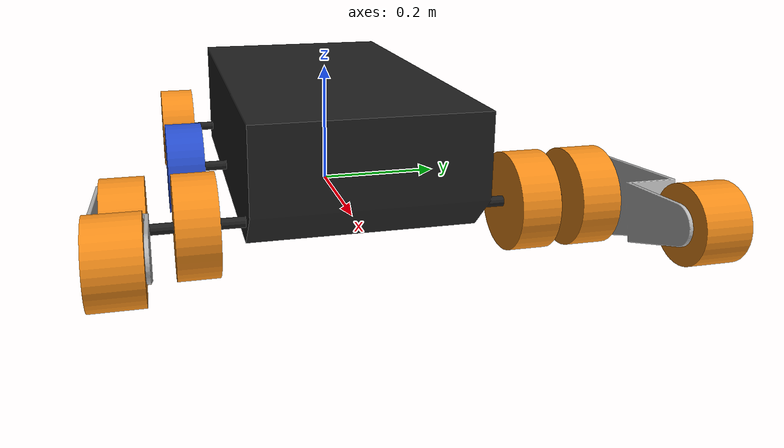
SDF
<sdf version='1.7'>
  <model name='hendbot'>
    <link name='base_link'>
      <inertial>
        <pose>-0.003667 -0 0.093492 0 -0 0</pose>
        <mass>441.809</mass>
        <inertia>
          <ixx>1.31882</ixx>
          <ixy>-1.29347e-07</ixy>
          <ixz>-0.0101969</ixz>
          <iyy>2.6734</iyy>
          <iyz>1.97052e-07</iyz>
          <izz>3.62601</izz>
        </inertia>
      </inertial>
      <collision name='base_link_fixed_joint_lump__hend_link_collision'>
        <pose>-0.33246 0 0 0 -0 0</pose>
        <geometry>
          <mesh>
            <scale>1 1 1</scale>
            <uri>model://hendbot/meshes/base_link.STL</uri>
          </mesh>
        </geometry>
        <surface>
          <contact>
            <ode/>
          </contact>
          <friction>
            <ode/>
          </friction>
        </surface>
      </collision>
      <collision name='base_link_fixed_joint_lump__LBW_Link_collision_1'>
        <pose>-0.28246 0.215 0.035 1.5708 -1.1717 -3.14159</pose>
        <geometry>
          <mesh>
            <scale>1 1 1</scale>
            <uri>model://hendbot/meshes/LBW_Link.STL</uri>
          </mesh>
        </geometry>
        <surface>
          <contact>
            <ode/>
          </contact>
          <friction>
            <ode>
              <mu>0.04</mu>
              <mu2>0.04</mu2>
            </ode>
          </friction>
        </surface>
      </collision>
      <collision name='base_link_fixed_joint_lump__LFW_Link_collision_2'>
        <pose>0.28245 0.215 0.035103 1.5708 0.76776 3.14159</pose>
        <geometry>
          <mesh>
            <scale>1 1 1</scale>
            <uri>model://hendbot/meshes/LFW_Link.STL</uri>
          </mesh>
        </geometry>
        <surface>
          <contact>
            <ode/>
          </contact>
          <friction>
            <ode>
              <mu>0.04</mu>
              <mu2>0.04</mu2>
            </ode>
          </friction>
        </surface>
      </collision>
      <collision name='base_link_fixed_joint_lump__RBW_Link_collision_3'>
        <pose>-0.28246 -0.215 0.035 -1.5708 0.11175 -0</pose>
        <geometry>
          <mesh>
            <scale>1 1 1</scale>
            <uri>model://hendbot/meshes/RBW_Link.STL</uri>
          </mesh>
        </geometry>
        <surface>
          <contact>
            <ode/>
          </contact>
          <friction>
            <ode>
              <mu>0.04</mu>
              <mu2>0.04</mu2>
            </ode>
          </friction>
        </surface>
      </collision>
      <collision name='base_link_fixed_joint_lump__RFW_Link_collision_4'>
        <pose>0.28245 -0.215 0.035103 1.5708 0.34292 3.14159</pose>
        <geometry>
          <mesh>
            <scale>1 1 1</scale>
            <uri>model://hendbot/meshes/RFW_Link.STL</uri>
          </mesh>
        </geometry>
        <surface>
          <contact>
            <ode/>
          </contact>
          <friction>
            <ode>
              <mu>0.04</mu>
              <mu2>0.04</mu2>
            </ode>
          </friction>
        </surface>
      </collision>
      <visual name='base_link_fixed_joint_lump__hend_link_visual'>
        <pose>-0.33246 0 0 0 -0 0</pose>
        <geometry>
          <mesh>
            <scale>1 1 1</scale>
            <uri>model://hendbot/meshes/base_link.STL</uri>
          </mesh>
        </geometry>
        <material>
          <script>
            <name>Gazebo/Black</name>
            <uri>file://media/materials/scripts/gazebo.material</uri>
          </script>
        </material>
      </visual>
      <visual name='base_link_fixed_joint_lump__LBW_Link_visual_1'>
        <pose>-0.28246 0.215 0.035 1.5708 -1.1717 -3.14159</pose>
        <geometry>
          <mesh>
            <scale>1 1 1</scale>
            <uri>model://hendbot/meshes/LBW_Link.STL</uri>
          </mesh>
        </geometry>
        <material>
          <script>
            <name>Gazebo/Orange</name>
            <uri>file://media/materials/scripts/gazebo.material</uri>
          </script>
        </material>
      </visual>
      <visual name='base_link_fixed_joint_lump__LFW_Link_visual_2'>
        <pose>0.28245 0.215 0.035103 1.5708 0.76776 3.14159</pose>
        <geometry>
          <mesh>
            <scale>1 1 1</scale>
            <uri>model://hendbot/meshes/LFW_Link.STL</uri>
          </mesh>
        </geometry>
        <material>
          <script>
            <name>Gazebo/Orange</name>
            <uri>file://media/materials/scripts/gazebo.material</uri>
          </script>
        </material>
      </visual>
      <visual name='base_link_fixed_joint_lump__RBW_Link_visual_3'>
        <pose>-0.28246 -0.215 0.035 -1.5708 0.11175 -0</pose>
        <geometry>
          <mesh>
            <scale>1 1 1</scale>
            <uri>model://hendbot/meshes/RBW_Link.STL</uri>
          </mesh>
        </geometry>
        <material>
          <script>
            <name>Gazebo/Orange</name>
            <uri>file://media/materials/scripts/gazebo.material</uri>
          </script>
        </material>
      </visual>
      <visual name='base_link_fixed_joint_lump__RFW_Link_visual_4'>
        <pose>0.28245 -0.215 0.035103 1.5708 0.34292 3.14159</pose>
        <geometry>
          <mesh>
            <scale>1 1 1</scale>
            <uri>model://hendbot/meshes/RFW_Link.STL</uri>
          </mesh>
        </geometry>
        <material>
          <script>
            <name>Gazebo/Orange</name>
            <uri>file://media/materials/scripts/gazebo.material</uri>
          </script>
        </material>
      </visual>
    </link>
    <joint name='WLBelt_Joint' type='revolute'>
      <pose relative_to='base_link'>4e-05 0.215 0.035052 1.5708 0.35384 3.14159</pose>
      <parent>base_link</parent>
      <child>WLBelt_Link</child>
      <axis>
        <xyz>0 0 1</xyz>
        <limit>
          <effort>100</effort>
          <velocity>100</velocity>
          <lower>-1e+16</lower>
          <upper>1e+16</upper>
        </limit>
        <dynamics>
          <damping>0.1</damping>
          <friction>0.1</friction>
          <spring_reference>0</spring_reference>
          <spring_stiffness>0</spring_stiffness>
        </dynamics>
      </axis>
    </joint>
    <link name='WLBelt_Link'>
      <pose relative_to='WLBelt_Joint'>0 0 0 0 -0 0</pose>
      <inertial>
        <pose>6e-06 2e-06 0.03 0 -0 0</pose>
        <mass>2.8302</mass>
        <inertia>
          <ixx>0.00487432</ixx>
          <ixy>1.0842e-19</ixy>
          <ixz>-5.95761e-21</ixz>
          <iyy>0.00487432</iyy>
          <iyz>-3.72125e-22</iyz>
          <izz>0.00805052</izz>
        </inertia>
      </inertial>
      <collision name='WLBelt_Link_collision'>
        <pose>0 0 0 0 -0 0</pose>
        <geometry>
          <mesh>
            <scale>1 1 1</scale>
            <uri>model://hendbot/meshes/WLBelt_Link.STL</uri>
          </mesh>
        </geometry>
        <surface>
          <contact>
            <ode/>
          </contact>
          <friction>
            <ode/>
          </friction>
        </surface>
      </collision>
      <visual name='WLBelt_Link_visual'>
        <pose>0 0 0 0 -0 0</pose>
        <geometry>
          <mesh>
            <scale>1 1 1</scale>
            <uri>model://hendbot/meshes/WLBelt_Link.STL</uri>
          </mesh>
        </geometry>
        <material>
          <script>
            <name>Gazebo/Blue</name>
            <uri>file://media/materials/scripts/gazebo.material</uri>
          </script>
        </material>
      </visual>
    </link>
    <joint name='WRBelt_Joint' type='revolute'>
      <pose relative_to='base_link'>4e-05 -0.215 0.035052 -1.5708 0.65732 0</pose>
      <parent>base_link</parent>
      <child>WRBelt_Link</child>
      <axis>
        <xyz>0 0 1</xyz>
        <limit>
          <effort>100</effort>
          <velocity>100</velocity>
          <lower>-1e+16</lower>
          <upper>1e+16</upper>
        </limit>
        <dynamics>
          <damping>0.1</damping>
          <friction>0.1</friction>
          <spring_reference>0</spring_reference>
          <spring_stiffness>0</spring_stiffness>
        </dynamics>
      </axis>
    </joint>
    <link name='WRBelt_Link'>
      <pose relative_to='WRBelt_Joint'>0 0 0 0 -0 0</pose>
      <inertial>
        <pose>-5e-06 4e-06 -0.03 0 -0 0</pose>
        <mass>2.8302</mass>
        <inertia>
          <ixx>0.00487432</ixx>
          <ixy>2.1684e-19</ixy>
          <ixz>9.79617e-36</ixz>
          <iyy>0.00487432</iyy>
          <iyz>7.94184e-36</iyz>
          <izz>0.00805052</izz>
        </inertia>
      </inertial>
      <collision name='WRBelt_Link_collision'>
        <pose>0 0 0 0 -0 0</pose>
        <geometry>
          <mesh>
            <scale>1 1 1</scale>
            <uri>model://hendbot/meshes/WRBelt_Link.STL</uri>
          </mesh>
        </geometry>
        <surface>
          <contact>
            <ode/>
          </contact>
          <friction>
            <ode/>
          </friction>
        </surface>
      </collision>
      <visual name='WRBelt_Link_visual'>
        <pose>0 0 0 0 -0 0</pose>
        <geometry>
          <mesh>
            <scale>1 1 1</scale>
            <uri>model://hendbot/meshes/WRBelt_Link.STL</uri>
          </mesh>
        </geometry>
        <material>
          <script>
            <name>Gazebo/Blue</name>
            <uri>file://media/materials/scripts/gazebo.material</uri>
          </script>
        </material>
      </visual>
    </link>
    <joint name='LFFW_Joint' type='revolute'>
      <pose relative_to='base_link'>0.28245 0.30998 0.035103 1.5708 -1.005 -3.14159</pose>
      <parent>base_link</parent>
      <child>LFFW_Link</child>
      <axis>
        <xyz>0 0 1</xyz>
        <limit>
          <effort>100</effort>
          <velocity>100</velocity>
          <lower>-1e+16</lower>
          <upper>1e+16</upper>
        </limit>
        <dynamics>
          <damping>0.1</damping>
          <friction>0.1</friction>
          <spring_reference>0</spring_reference>
          <spring_stiffness>0</spring_stiffness>
        </dynamics>
      </axis>
    </joint>
    <link name='LFFW_Link'>
      <pose relative_to='LFFW_Joint'>0 0 0 0 -0 0</pose>
      <inertial>
        <pose>-0.016199 0.044173 0.030887 0 -0 0</pose>
        <mass>3.50118</mass>
        <inertia>
          <ixx>0.0402368</ixx>
          <ixy>0.0126939</ixy>
          <ixz>-6.84372e-05</ixz>
          <iyy>0.0103212</iyy>
          <iyz>0.00018326</iyz>
          <izz>0.0481955</izz>
        </inertia>
      </inertial>
      <collision name='LFFW_Link_collision'>
        <pose>0 0 0 0 -0 0</pose>
        <geometry>
          <mesh>
            <scale>1 1 1</scale>
            <uri>model://hendbot/meshes/LFFW_Link.STL</uri>
          </mesh>
        </geometry>
        <surface>
          <contact>
            <ode/>
          </contact>
          <friction>
            <ode>
              <mu>0.04</mu>
              <mu2>0.04</mu2>
            </ode>
          </friction>
        </surface>
      </collision>
      <collision name='LFFW_Link_fixed_joint_lump__LF_Link_collision_1'>
        <pose>0 0 0 0 -0 1.91705</pose>
        <geometry>
          <mesh>
            <scale>1 1 1</scale>
            <uri>model://hendbot/meshes/LF_Link.STL</uri>
          </mesh>
        </geometry>
      </collision>
      <collision name='LFFW_Link_fixed_joint_lump__LW_Link_collision_2'>
        <pose>-0.103425 0.281385 0 0 0 -2.57584</pose>
        <geometry>
          <mesh>
            <scale>1 1 1</scale>
            <uri>model://hendbot/meshes/LW_Link.STL</uri>
          </mesh>
        </geometry>
        <surface>
          <contact>
            <ode/>
          </contact>
          <friction>
            <ode>
              <mu>0.04</mu>
              <mu2>0.04</mu2>
            </ode>
          </friction>
        </surface>
      </collision>
      <visual name='LFFW_Link_visual'>
        <pose>0 0 0 0 -0 0</pose>
        <geometry>
          <mesh>
            <scale>1 1 1</scale>
            <uri>model://hendbot/meshes/LFFW_Link.STL</uri>
          </mesh>
        </geometry>
        <material>
          <script>
            <name>Gazebo/Orange</name>
            <uri>file://media/materials/scripts/gazebo.material</uri>
          </script>
        </material>
      </visual>
      <visual name='LFFW_Link_fixed_joint_lump__LF_Link_visual_1'>
        <pose>0 0 0 0 -0 1.91705</pose>
        <geometry>
          <mesh>
            <scale>1 1 1</scale>
            <uri>model://hendbot/meshes/LF_Link.STL</uri>
          </mesh>
        </geometry>
      </visual>
      <visual name='LFFW_Link_fixed_joint_lump__LW_Link_visual_2'>
        <pose>-0.103425 0.281385 0 0 0 -2.57584</pose>
        <geometry>
          <mesh>
            <scale>1 1 1</scale>
            <uri>model://hendbot/meshes/LW_Link.STL</uri>
          </mesh>
        </geometry>
        <material>
          <script>
            <name>Gazebo/Orange</name>
            <uri>file://media/materials/scripts/gazebo.material</uri>
          </script>
        </material>
      </visual>
    </link>
    <joint name='RFFW_Joint' type='revolute'>
      <pose relative_to='base_link'>0.28245 -0.31 0.035103 -1.5708 -0.76747 0</pose>
      <parent>base_link</parent>
      <child>RFFW_Link</child>
      <axis>
        <xyz>0 0 1</xyz>
        <limit>
          <effort>100</effort>
          <velocity>100</velocity>
          <lower>-1e+16</lower>
          <upper>1e+16</upper>
        </limit>
        <dynamics>
          <damping>0.1</damping>
          <friction>0.1</friction>
          <spring_reference>0</spring_reference>
          <spring_stiffness>0</spring_stiffness>
        </dynamics>
      </axis>
    </joint>
    <link name='RFFW_Link'>
      <pose relative_to='RFFW_Joint'>0 0 0 0 -0 0</pose>
      <inertial>
        <pose>0.041307 0.022524 -0.030886 0 -0 0</pose>
        <mass>3.50118</mass>
        <inertia>
          <ixx>0.0146412</ixx>
          <ixy>-0.0164836</ixy>
          <ixz>-0.000172565</ixz>
          <iyy>0.0359161</iyy>
          <iyz>-9.27813e-05</iyz>
          <izz>0.0481951</izz>
        </inertia>
      </inertial>
      <collision name='RFFW_Link_collision'>
        <pose>0 0 0 0 -0 0</pose>
        <geometry>
          <mesh>
            <scale>1 1 1</scale>
            <uri>model://hendbot/meshes/RFFW_Link.STL</uri>
          </mesh>
        </geometry>
        <surface>
          <contact>
            <ode/>
          </contact>
          <friction>
            <ode>
              <mu>0.04</mu>
              <mu2>0.04</mu2>
            </ode>
          </friction>
        </surface>
      </collision>
      <collision name='RFFW_Link_fixed_joint_lump__RF_Link_collision_1'>
        <pose>0 0.01 0 0 -0 0.504452</pose>
        <geometry>
          <mesh>
            <scale>1 1 1</scale>
            <uri>model://hendbot/meshes/RF_Link.STL</uri>
          </mesh>
        </geometry>
      </collision>
      <collision name='RFFW_Link_fixed_joint_lump__RW_Link_collision_2'>
        <pose>0.263308 0.143325 0 0 0 -0.803348</pose>
        <geometry>
          <mesh>
            <scale>1 1 1</scale>
            <uri>model://hendbot/meshes/RW_Link.STL</uri>
          </mesh>
        </geometry>
        <surface>
          <contact>
            <ode/>
          </contact>
          <friction>
            <ode>
              <mu>0.04</mu>
              <mu2>0.04</mu2>
            </ode>
          </friction>
        </surface>
      </collision>
      <visual name='RFFW_Link_visual'>
        <pose>0 0 0 0 -0 0</pose>
        <geometry>
          <mesh>
            <scale>1 1 1</scale>
            <uri>model://hendbot/meshes/RFFW_Link.STL</uri>
          </mesh>
        </geometry>
        <material>
          <script>
            <name>Gazebo/Orange</name>
            <uri>file://media/materials/scripts/gazebo.material</uri>
          </script>
        </material>
      </visual>
      <visual name='RFFW_Link_fixed_joint_lump__RF_Link_visual_1'>
        <pose>0 0.01 0 0 -0 0.504452</pose>
        <geometry>
          <mesh>
            <scale>1 1 1</scale>
            <uri>model://hendbot/meshes/RF_Link.STL</uri>
          </mesh>
        </geometry>
      </visual>
      <visual name='RFFW_Link_fixed_joint_lump__RW_Link_visual_2'>
        <pose>0.263308 0.143325 0 0 0 -0.803348</pose>
        <geometry>
          <mesh>
            <scale>1 1 1</scale>
            <uri>model://hendbot/meshes/RW_Link.STL</uri>
          </mesh>
        </geometry>
        <material>
          <script>
            <name>Gazebo/Orange</name>
            <uri>file://media/materials/scripts/gazebo.material</uri>
          </script>
        </material>
      </visual>
    </link>
  </model>
</sdf>
